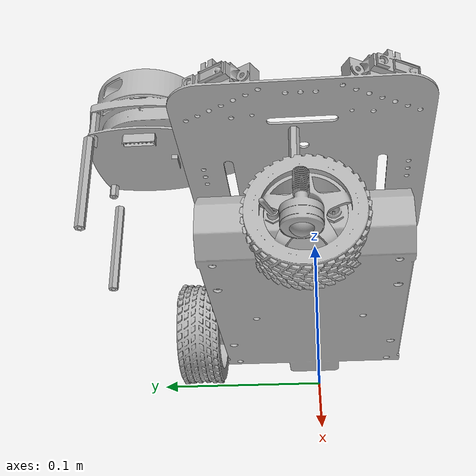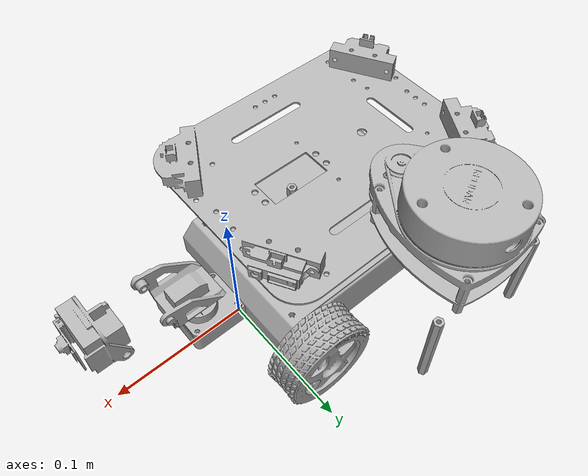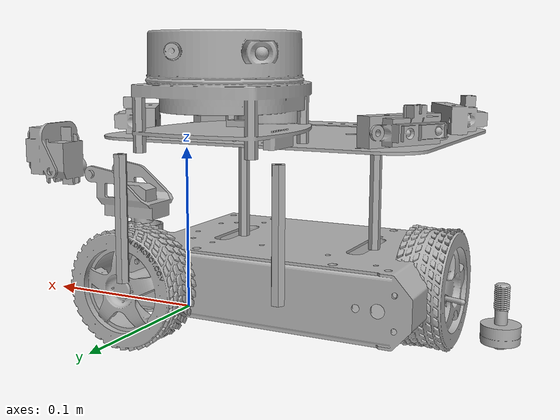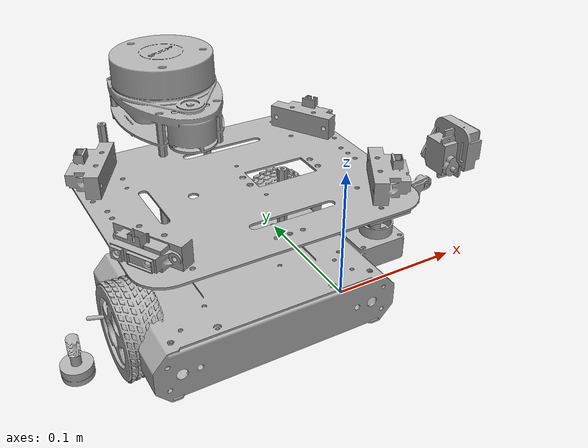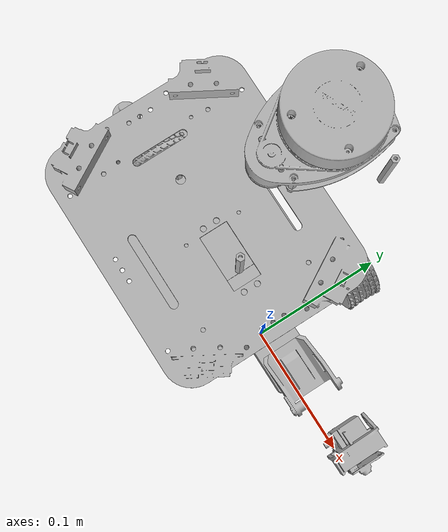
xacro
<?xml version="1.0" ?>
<robot name="PRM_components_urdf" xmlns:xacro="http://www.ros.org/wiki/xacro">

<xacro:include filename="$(find PRM_components_urdf_description)/urdf/materials.xacro" />
<xacro:include filename="$(find PRM_components_urdf_description)/urdf/PRM_components_urdf.trans" />
<xacro:include filename="$(find PRM_components_urdf_description)/urdf/PRM_components_urdf.gazebo" />
<link name="base_link">
  <inertial>
    <origin rpy="0 0 0" xyz="-0.10577629127207062 0.005761505432528843 0.03808535197655524"/>
    <mass value="1.0594038588025692"/>
    <inertia ixx="0.001676" ixy="0.000152" ixz="0.000333" iyy="0.008771" iyz="-7.1e-05" izz="0.009683"/>
  </inertial>
  <visual>
    <origin rpy="0 0 0" xyz="0 0 0"/>
    <geometry>
      <mesh filename="package://PRM_components_urdf_description/meshes/base_link.stl" scale="0.001 0.001 0.001"/>
    </geometry>
    <material name="silver"/>
  </visual>
  <collision>
    <origin rpy="0 0 0" xyz="0 0 0"/>
    <geometry>
      <mesh filename="package://PRM_components_urdf_description/meshes/base_link.stl" scale="0.001 0.001 0.001"/>
    </geometry>
  </collision>
</link>

<link name="left_wheel_1">
  <inertial>
    <origin rpy="0 0 0" xyz="-5.514750903637747e-06 0.01684893311479653 7.516213665285931e-06"/>
    <mass value="0.0557255774837727"/>
    <inertia ixx="1.9e-05" ixy="0.0" ixz="0.0" iyy="3e-05" iyz="-0.0" izz="1.9e-05"/>
  </inertial>
  <visual>
    <origin rpy="0 0 0" xyz="0.010889 -0.058419 -0.032408"/>
    <geometry>
      <mesh filename="package://PRM_components_urdf_description/meshes/left_wheel_1.stl" scale="0.001 0.001 0.001"/>
    </geometry>
    <material name="silver"/>
  </visual>
  <collision>
    <origin rpy="0 0 0" xyz="0.010889 -0.058419 -0.032408"/>
    <geometry>
      <mesh filename="package://PRM_components_urdf_description/meshes/left_wheel_1.stl" scale="0.001 0.001 0.001"/>
    </geometry>
  </collision>
</link>

<link name="right_wheel_3">
  <inertial>
    <origin rpy="0 0 0" xyz="6.825622156371794e-06 -0.0168397715083117 5.538351484139781e-06"/>
    <mass value="0.055725588971055603"/>
    <inertia ixx="1.9e-05" ixy="-0.0" ixz="-0.0" iyy="3e-05" iyz="-0.0" izz="1.9e-05"/>
  </inertial>
  <visual>
    <origin rpy="0 0 0" xyz="0.010889 0.051581 -0.032408"/>
    <geometry>
      <mesh filename="package://PRM_components_urdf_description/meshes/right_wheel_3.stl" scale="0.001 0.001 0.001"/>
    </geometry>
    <material name="silver"/>
  </visual>
  <collision>
    <origin rpy="0 0 0" xyz="0.010889 0.051581 -0.032408"/>
    <geometry>
      <mesh filename="package://PRM_components_urdf_description/meshes/right_wheel_3.stl" scale="0.001 0.001 0.001"/>
    </geometry>
  </collision>
</link>

<link name="lien_plaque_sup_1">
  <inertial>
    <origin rpy="0 0 0" xyz="-0.06000033725581454 -0.03999979892532527 0.030000328306584424"/>
    <mass value="0.016233798346575297"/>
    <inertia ixx="3.1e-05" ixy="0.0" ixz="0.0" iyy="6.3e-05" iyz="0.0" izz="8.4e-05"/>
  </inertial>
  <visual>
    <origin rpy="0 0 0" xyz="0.017389 -0.043419 -0.051408"/>
    <geometry>
      <mesh filename="package://PRM_components_urdf_description/meshes/lien_plaque_sup_1.stl" scale="0.001 0.001 0.001"/>
    </geometry>
    <material name="silver"/>
  </visual>
  <collision>
    <origin rpy="0 0 0" xyz="0.017389 -0.043419 -0.051408"/>
    <geometry>
      <mesh filename="package://PRM_components_urdf_description/meshes/lien_plaque_sup_1.stl" scale="0.001 0.001 0.001"/>
    </geometry>
  </collision>
</link>

<link name="plaque_sup_1">
  <inertial>
    <origin rpy="0 0 0" xyz="-0.06029791949219093 -0.03999979900860389 0.00604737283687512"/>
    <mass value="0.26145266960030816"/>
    <inertia ixx="0.000583" ixy="1e-06" ixz="-0.0" iyy="0.001267" iyz="0.0" izz="0.001836"/>
  </inertial>
  <visual>
    <origin rpy="0 0 0" xyz="0.017389 -0.043419 -0.111408"/>
    <geometry>
      <mesh filename="package://PRM_components_urdf_description/meshes/plaque_sup_1.stl" scale="0.001 0.001 0.001"/>
    </geometry>
    <material name="silver"/>
  </visual>
  <collision>
    <origin rpy="0 0 0" xyz="0.017389 -0.043419 -0.111408"/>
    <geometry>
      <mesh filename="package://PRM_components_urdf_description/meshes/plaque_sup_1.stl" scale="0.001 0.001 0.001"/>
    </geometry>
  </collision>
</link>

<link name="laser_1">
  <inertial>
    <origin rpy="0 0 0" xyz="0.03968835231768589 0.027497343099224456 0.022537081249719412"/>
    <mass value="0.07886865487875269"/>
    <inertia ixx="4e-05" ixy="-1e-06" ixz="6e-06" iyy="7.4e-05" iyz="0.0" izz="8.3e-05"/>
  </inertial>
  <visual>
    <origin rpy="0 0 0" xyz="0.138934 0.024581 -0.122908"/>
    <geometry>
      <mesh filename="package://PRM_components_urdf_description/meshes/laser_1.stl" scale="0.001 0.001 0.001"/>
    </geometry>
    <material name="silver"/>
  </visual>
  <collision>
    <origin rpy="0 0 0" xyz="0.138934 0.024581 -0.122908"/>
    <geometry>
      <mesh filename="package://PRM_components_urdf_description/meshes/laser_1.stl" scale="0.001 0.001 0.001"/>
    </geometry>
  </collision>
</link>

<link name="tilt_1">
  <inertial>
    <origin rpy="0 0 0" xyz="0.0037386169360073412 0.012530560104144628 0.008107618712737519"/>
    <mass value="0.0837710951291597"/>
    <inertia ixx="1.2e-05" ixy="0.0" ixz="-1e-06" iyy="9e-06" iyz="-0.0" izz="9e-06"/>
  </inertial>
  <visual>
    <origin rpy="0 0 0" xyz="-0.087561 0.006184 -0.082523"/>
    <geometry>
      <mesh filename="package://PRM_components_urdf_description/meshes/tilt_1.stl" scale="0.001 0.001 0.001"/>
    </geometry>
    <material name="silver"/>
  </visual>
  <collision>
    <origin rpy="0 0 0" xyz="-0.087561 0.006184 -0.082523"/>
    <geometry>
      <mesh filename="package://PRM_components_urdf_description/meshes/tilt_1.stl" scale="0.001 0.001 0.001"/>
    </geometry>
  </collision>
</link>

<link name="camera_1">
  <inertial>
    <origin rpy="0 0 0" xyz="0.0006061218390486928 -0.002779711025054816 3.853164737116499e-05"/>
    <mass value="0.0010901216474161416"/>
    <inertia ixx="0.0" ixy="-0.0" ixz="0.0" iyy="0.0" iyz="-0.0" izz="0.0"/>
  </inertial>
  <visual>
    <origin rpy="0 0 0" xyz="-0.108792 -0.005812 -0.094601"/>
    <geometry>
      <mesh filename="package://PRM_components_urdf_description/meshes/camera_1.stl" scale="0.001 0.001 0.001"/>
    </geometry>
    <material name="silver"/>
  </visual>
  <collision>
    <origin rpy="0 0 0" xyz="-0.108792 -0.005812 -0.094601"/>
    <geometry>
      <mesh filename="package://PRM_components_urdf_description/meshes/camera_1.stl" scale="0.001 0.001 0.001"/>
    </geometry>
  </collision>
</link>

<link name="pan_1">
  <inertial>
    <origin rpy="0 0 0" xyz="0.0069708218233762095 -0.00020090348207176673 0.01747484554716784"/>
    <mass value="0.10221097927434727"/>
    <inertia ixx="1.4e-05" ixy="0.0" ixz="-3e-06" iyy="1.7e-05" iyz="0.0" izz="1.9e-05"/>
  </inertial>
  <visual>
    <origin rpy="0 0 0" xyz="-0.060411 -0.003405 -0.048232"/>
    <geometry>
      <mesh filename="package://PRM_components_urdf_description/meshes/pan_1.stl" scale="0.001 0.001 0.001"/>
    </geometry>
    <material name="silver"/>
  </visual>
  <collision>
    <origin rpy="0 0 0" xyz="-0.060411 -0.003405 -0.048232"/>
    <geometry>
      <mesh filename="package://PRM_components_urdf_description/meshes/pan_1.stl" scale="0.001 0.001 0.001"/>
    </geometry>
  </collision>
</link>

<link name="roue_folle_1">
  <inertial>
    <origin rpy="0 0 0" xyz="-8.763853124593712e-07 6.426062275442096e-07 -0.0006014809640806466"/>
    <mass value="0.0034293258621157863"/>
    <inertia ixx="0.0" ixy="0.0" ixz="0.0" iyy="0.0" iyz="-0.0" izz="0.0"/>
  </inertial>
  <visual>
    <origin rpy="0 0 0" xyz="0.192139 -0.003419 -0.017908"/>
    <geometry>
      <mesh filename="package://PRM_components_urdf_description/meshes/roue_folle_1.stl" scale="0.001 0.001 0.001"/>
    </geometry>
    <material name="silver"/>
  </visual>
  <collision>
    <origin rpy="0 0 0" xyz="0.192139 -0.003419 -0.017908"/>
    <geometry>
      <mesh filename="package://PRM_components_urdf_description/meshes/roue_folle_1.stl" scale="0.001 0.001 0.001"/>
    </geometry>
  </collision>
</link>

<link name="bille_porteuse_1">
  <inertial>
    <origin rpy="0 0 0" xyz="-3.3564421661469446e-07 2.010746746159038e-07 3.283065864671114e-07"/>
    <mass value="0.008419367021437509"/>
    <inertia ixx="0.0" ixy="-0.0" ixz="0.0" iyy="0.0" iyz="0.0" izz="0.0"/>
  </inertial>
  <visual>
    <origin rpy="0 0 0" xyz="0.192139 -0.003419 -0.010511"/>
    <geometry>
      <mesh filename="package://PRM_components_urdf_description/meshes/bille_porteuse_1.stl" scale="0.001 0.001 0.001"/>
    </geometry>
    <material name="silver"/>
  </visual>
  <collision>
    <origin rpy="0 0 0" xyz="0.192139 -0.003419 -0.010511"/>
    <geometry>
      <mesh filename="package://PRM_components_urdf_description/meshes/bille_porteuse_1.stl" scale="0.001 0.001 0.001"/>
    </geometry>
  </collision>
</link>

<joint name="rev_left" type="continuous">
  <origin rpy="0 0 0" xyz="-0.010889 0.058419 0.032408"/>
  <parent link="base_link"/>
  <child link="left_wheel_1"/>
  <axis xyz="0.0 0.01 -0.0"/>
</joint>

<joint name="rev_right" type="continuous">
  <origin rpy="0 0 0" xyz="-0.010889 -0.051581 0.032408"/>
  <parent link="base_link"/>
  <child link="right_wheel_3"/>
  <axis xyz="-0.0 -0.01 0.0"/>
</joint>

<joint name="rigid_plaque_inf" type="fixed">
  <origin rpy="0 0 0" xyz="-0.017389 0.043419 0.051408"/>
  <parent link="base_link"/>
  <child link="lien_plaque_sup_1"/>
</joint>

<joint name="rigid_plaque_sup" type="fixed">
  <origin rpy="0 0 0" xyz="0.0 0.0 0.06"/>
  <parent link="lien_plaque_sup_1"/>
  <child link="plaque_sup_1"/>
</joint>

<joint name="rplidar_joint" type="fixed">
  <origin rpy="0 0 0" xyz="-0.121545 -0.068 0.0115"/>
  <parent link="plaque_sup_1"/>
  <child link="laser_1"/>
</joint>

<joint name="tilt_joint" type="revolute">
  <origin rpy="0 0 0" xyz="0.02715 -0.009589 0.034291"/>
  <parent link="pan_1"/>
  <child link="tilt_1"/>
  <axis xyz="5.3e-05 -0.01 -9e-06"/>
  <limit effort="100" lower="-1.434661" upper="1.434661" velocity="100"/>
</joint>

<joint name="rigid_camera" type="fixed">
  <origin rpy="0 0 0" xyz="0.021231 0.011996 0.012078"/>
  <parent link="tilt_1"/>
  <child link="camera_1"/>
</joint>

<joint name="pan_joint" type="continuous">
  <origin rpy="0 0 0" xyz="0.060411 0.003405 0.048232"/>
  <parent link="base_link"/>
  <child link="pan_1"/>
  <axis xyz="-0.0 -9e-06 0.01"/>
</joint>

<joint name="rigid_roue_folle" type="fixed">
  <origin rpy="0 0 0" xyz="-0.192139 0.003419 0.017908"/>
  <parent link="base_link"/>
  <child link="roue_folle_1"/>
</joint>

<joint name="caster" type="Ball">
  <origin rpy="0 0 0" xyz="0.0 0.0 -0.007397"/>
  <parent link="roue_folle_1"/>
  <child link="bille_porteuse_1"/>
</joint>

</robot>

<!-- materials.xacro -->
<robot name="PRM_components_urdf" xmlns:xacro="http://www.ros.org/wiki/xacro" >

<material name="silver">
  <color rgba="0.700 0.700 0.700 1.000"/>
</material>

</robot>

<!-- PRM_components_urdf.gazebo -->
<robot name="PRM_components_urdf" xmlns:xacro="http://www.ros.org/wiki/xacro" >

<xacro:property name="body_color" value="Gazebo/Silver" />

<gazebo>
  <plugin filename="libgazebo_ros_control.so" name="control"/>
</gazebo>
<gazebo reference="base_link">
  <material>${body_color}</material>
  <mu1>0.2</mu1>
  <mu2>0.2</mu2>
  <selfCollide>true</selfCollide>
  <gravity>true</gravity>
</gazebo>

<gazebo reference="left_wheel_1">
  <material>${body_color}</material>
  <mu1>0.2</mu1>
  <mu2>0.2</mu2>
  <selfCollide>true</selfCollide>
</gazebo>

<gazebo reference="right_wheel_3">
  <material>${body_color}</material>
  <mu1>0.2</mu1>
  <mu2>0.2</mu2>
  <selfCollide>true</selfCollide>
</gazebo>

<gazebo reference="lien_plaque_sup_1">
  <material>${body_color}</material>
  <mu1>0.2</mu1>
  <mu2>0.2</mu2>
  <selfCollide>true</selfCollide>
</gazebo>

<gazebo reference="plaque_sup_1">
  <material>${body_color}</material>
  <mu1>0.2</mu1>
  <mu2>0.2</mu2>
  <selfCollide>true</selfCollide>
</gazebo>

<gazebo reference="laser_1">
  <material>${body_color}</material>
  <mu1>0.2</mu1>
  <mu2>0.2</mu2>
  <selfCollide>true</selfCollide>
</gazebo>

<gazebo reference="tilt_1">
  <material>${body_color}</material>
  <mu1>0.2</mu1>
  <mu2>0.2</mu2>
  <selfCollide>true</selfCollide>
</gazebo>

<gazebo reference="camera_1">
  <material>${body_color}</material>
  <mu1>0.2</mu1>
  <mu2>0.2</mu2>
  <selfCollide>true</selfCollide>
</gazebo>

<gazebo reference="pan_1">
  <material>${body_color}</material>
  <mu1>0.2</mu1>
  <mu2>0.2</mu2>
  <selfCollide>true</selfCollide>
</gazebo>

<gazebo reference="roue_folle_1">
  <material>${body_color}</material>
  <mu1>0.2</mu1>
  <mu2>0.2</mu2>
  <selfCollide>true</selfCollide>
</gazebo>

<gazebo reference="bille_porteuse_1">
  <material>${body_color}</material>
  <mu1>0.2</mu1>
  <mu2>0.2</mu2>
  <selfCollide>true</selfCollide>
</gazebo>

</robot>
